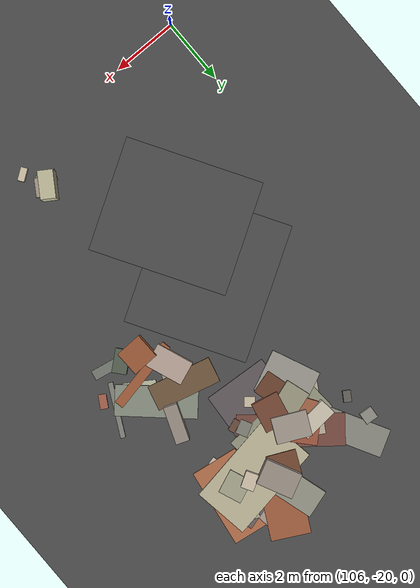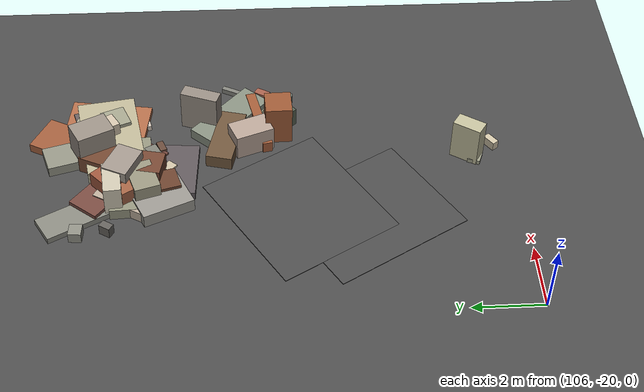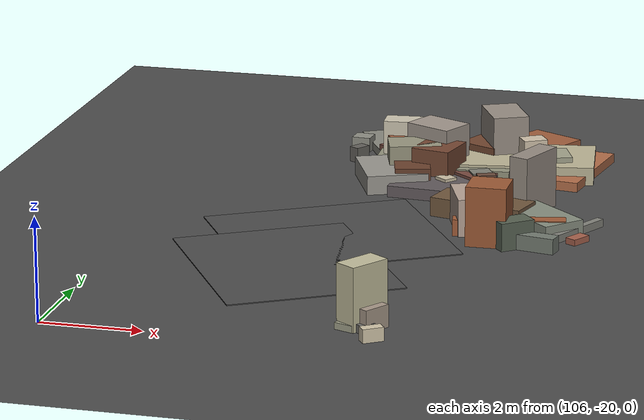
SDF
<sdf version="1.6">
 <world name="navitas_arena">
  <model name="ground_plane">
   <static>true</static>
   <link name="link">
    <collision name="collision">
     <geometry><plane><normal>0 0 1</normal><size>400 400</size></plane></geometry>
     <surface><friction><ode><mu>0.800</mu><mu2>0.800</mu2></ode></friction></surface>
    </collision>
    <visual name="visual">
     <cast_shadows>false</cast_shadows>
     <geometry><plane><normal>0 0 1</normal><size>400 400</size></plane></geometry>
     <material>
      <specular>0.04 0.04 0.04 1</specular>
      <script>
       <uri>file://media/materials/scripts/navitas_asphalt.material</uri>
       <name>Navitas/RealArenaAsphalt</name>
      </script>
     </material>
    </visual>
   </link>
  </model>
  <model name="road_zor_3_7">
   <static>true</static>
   <pose>109.474 -15.662 0.040 0 0 0.542</pose>
   <link name="link">
    <collision name="col"><geometry><box><size>3.467 4.200 0.020</size></box></geometry></collision>
    <visual name="vis">
     <geometry><box><size>3.467 4.200 0.020</size></box></geometry>
     <material>
      <specular>0.04 0.04 0.04 1</specular>
      <script>
       <uri>file://media/materials/scripts/navitas_asphalt.material</uri>
       <name>Navitas/RealArenaAsphalt</name>
      </script>
     </material>
    </visual>
   </link>
  </model>
  <model name="road_zor_3_8">
   <static>true</static>
   <pose>109.844 -13.779 0.040 0 0 2.110</pose>
   <link name="link">
    <collision name="col"><geometry><box><size>3.745 4.200 0.020</size></box></geometry></collision>
    <visual name="vis">
     <geometry><box><size>3.745 4.200 0.020</size></box></geometry>
     <material>
      <specular>0.04 0.04 0.04 1</specular>
      <script>
       <uri>file://media/materials/scripts/navitas_asphalt.material</uri>
       <name>Navitas/RealArenaAsphalt</name>
      </script>
     </material>
    </visual>
   </link>
  </model>
  <model name="deb_zor_59">
   <static>true</static>
   <pose>110.624 -9.342 0.000 0 0 0</pose>
   <link name="link">
    <collision name="col_0">
     <pose>-0.499 0.326 0.361 0.000 0.000 2.141</pose>
     <geometry><box><size>0.810 0.435 0.723</size></box></geometry>
    </collision>
    <visual name="vis_0">
     <pose>-0.499 0.326 0.361 0.000 0.000 2.141</pose>
     <geometry><box><size>0.810 0.435 0.723</size></box></geometry>
     <material>
      <ambient>0.60 0.36 0.25 1</ambient>
      <diffuse>0.64 0.39 0.27 1</diffuse>
      <specular>0.05 0.05 0.045 1</specular>
     </material>
    </visual>
    <collision name="col_1">
     <pose>0.622 0.624 0.141 0.000 0.000 1.735</pose>
     <geometry><box><size>0.220 0.219 0.282</size></box></geometry>
    </collision>
    <visual name="vis_1">
     <pose>0.622 0.624 0.141 0.000 0.000 1.735</pose>
     <geometry><box><size>0.220 0.219 0.282</size></box></geometry>
     <material>
      <ambient>0.61 0.35 0.29 1</ambient>
      <diffuse>0.66 0.38 0.31 1</diffuse>
      <specular>0.05 0.05 0.045 1</specular>
     </material>
    </visual>
    <collision name="col_2">
     <pose>0.409 -0.214 0.392 0.000 0.000 2.933</pose>
     <geometry><box><size>0.818 0.908 0.784</size></box></geometry>
    </collision>
    <visual name="vis_2">
     <pose>0.409 -0.214 0.392 0.000 0.000 2.933</pose>
     <geometry><box><size>0.818 0.908 0.784</size></box></geometry>
     <material>
      <ambient>0.42 0.26 0.19 1</ambient>
      <diffuse>0.46 0.28 0.20 1</diffuse>
      <specular>0.05 0.05 0.045 1</specular>
     </material>
    </visual>
    <collision name="col_3">
     <pose>0.124 0.067 0.073 0.000 0.000 1.874</pose>
     <geometry><box><size>2.369 0.306 0.147</size></box></geometry>
    </collision>
    <visual name="vis_3">
     <pose>0.124 0.067 0.073 0.000 0.000 1.874</pose>
     <geometry><box><size>2.369 0.306 0.147</size></box></geometry>
     <material>
      <ambient>0.63 0.60 0.53 1</ambient>
      <diffuse>0.68 0.65 0.57 1</diffuse>
      <specular>0.05 0.05 0.045 1</specular>
     </material>
    </visual>
    <collision name="col_4">
     <pose>0.616 0.426 0.137 0.000 0.000 2.727</pose>
     <geometry><box><size>0.232 0.344 0.273</size></box></geometry>
    </collision>
    <visual name="vis_4">
     <pose>0.616 0.426 0.137 0.000 0.000 2.727</pose>
     <geometry><box><size>0.232 0.344 0.273</size></box></geometry>
     <material>
      <ambient>0.48 0.46 0.43 1</ambient>
      <diffuse>0.52 0.50 0.47 1</diffuse>
      <specular>0.05 0.05 0.045 1</specular>
     </material>
    </visual>
    <collision name="col_5">
     <pose>0.241 0.457 0.529 0.000 0.000 2.690</pose>
     <geometry><box><size>1.043 0.763 1.059</size></box></geometry>
    </collision>
    <visual name="vis_5">
     <pose>0.241 0.457 0.529 0.000 0.000 2.690</pose>
     <geometry><box><size>1.043 0.763 1.059</size></box></geometry>
     <material>
      <ambient>0.58 0.55 0.51 1</ambient>
      <diffuse>0.63 0.59 0.55 1</diffuse>
      <specular>0.05 0.05 0.045 1</specular>
     </material>
    </visual>
    <collision name="col_6">
     <pose>0.045 0.675 0.371 0.000 0.000 2.301</pose>
     <geometry><box><size>1.047 0.888 0.742</size></box></geometry>
    </collision>
    <visual name="vis_6">
     <pose>0.045 0.675 0.371 0.000 0.000 2.301</pose>
     <geometry><box><size>1.047 0.888 0.742</size></box></geometry>
     <material>
      <ambient>0.57 0.32 0.22 1</ambient>
      <diffuse>0.62 0.34 0.24 1</diffuse>
      <specular>0.05 0.05 0.045 1</specular>
     </material>
    </visual>
   </link>
  </model>
  <model name="deb_zor_185">
   <static>true</static>
   <pose>113.041 -11.588 0.000 0 0 0</pose>
   <link name="link">
    <collision name="col_0">
     <pose>0.272 0.501 0.620 0.000 0.000 1.208</pose>
     <geometry><box><size>1.107 0.407 1.239</size></box></geometry>
    </collision>
    <visual name="vis_0">
     <pose>0.272 0.501 0.620 0.000 0.000 1.208</pose>
     <geometry><box><size>1.107 0.407 1.239</size></box></geometry>
     <material>
      <ambient>0.54 0.51 0.47 1</ambient>
      <diffuse>0.59 0.55 0.51 1</diffuse>
      <specular>0.05 0.05 0.045 1</specular>
     </material>
    </visual>
    <collision name="col_1">
     <pose>0.144 -1.179 0.168 0.000 0.000 0.197</pose>
     <geometry><box><size>2.219 0.284 0.335</size></box></geometry>
    </collision>
    <visual name="vis_1">
     <pose>0.144 -1.179 0.168 0.000 0.000 0.197</pose>
     <geometry><box><size>2.219 0.284 0.335</size></box></geometry>
     <material>
      <ambient>0.59 0.34 0.21 1</ambient>
      <diffuse>0.63 0.36 0.22 1</diffuse>
      <specular>0.05 0.05 0.045 1</specular>
     </material>
    </visual>
    <collision name="col_2">
     <pose>-0.657 -0.920 0.377 0.000 0.000 -1.208</pose>
     <geometry><box><size>1.140 0.718 0.755</size></box></geometry>
    </collision>
    <visual name="vis_2">
     <pose>-0.657 -0.920 0.377 0.000 0.000 -1.208</pose>
     <geometry><box><size>1.140 0.718 0.755</size></box></geometry>
     <material>
      <ambient>0.67 0.59 0.55 1</ambient>
      <diffuse>0.72 0.64 0.59 1</diffuse>
      <specular>0.05 0.05 0.045 1</specular>
     </material>
    </visual>
    <collision name="col_3">
     <pose>-0.595 -0.209 0.195 0.000 0.000 -0.249</pose>
     <geometry><box><size>1.958 0.758 0.390</size></box></geometry>
    </collision>
    <visual name="vis_3">
     <pose>-0.595 -0.209 0.195 0.000 0.000 -0.249</pose>
     <geometry><box><size>1.958 0.758 0.390</size></box></geometry>
     <material>
      <ambient>0.40 0.31 0.22 1</ambient>
      <diffuse>0.44 0.34 0.24 1</diffuse>
      <specular>0.05 0.05 0.045 1</specular>
     </material>
    </visual>
    <collision name="col_4">
     <pose>-0.354 -0.815 0.075 0.000 0.000 1.161</pose>
     <geometry><box><size>0.480 0.174 0.149</size></box></geometry>
    </collision>
    <visual name="vis_4">
     <pose>-0.354 -0.815 0.075 0.000 0.000 1.161</pose>
     <geometry><box><size>0.480 0.174 0.149</size></box></geometry>
     <material>
      <ambient>0.57 0.56 0.48 1</ambient>
      <diffuse>0.62 0.60 0.52 1</diffuse>
      <specular>0.05 0.05 0.045 1</specular>
     </material>
    </visual>
    <collision name="col_5">
     <pose>0.478 -0.350 0.155 0.000 0.000 -0.780</pose>
     <geometry><box><size>0.514 0.214 0.311</size></box></geometry>
    </collision>
    <visual name="vis_5">
     <pose>0.478 -0.350 0.155 0.000 0.000 -0.780</pose>
     <geometry><box><size>0.514 0.214 0.311</size></box></geometry>
     <material>
      <ambient>0.37 0.27 0.18 1</ambient>
      <diffuse>0.40 0.29 0.19 1</diffuse>
      <specular>0.05 0.05 0.045 1</specular>
     </material>
    </visual>
   </link>
  </model>
  <model name="deb_zor_215">
   <static>true</static>
   <pose>111.366 -19.476 0.000 0 0 0</pose>
   <link name="link">
    <collision name="col_0">
     <pose>0.721 0.020 0.132 0.000 0.000 0.610</pose>
     <geometry><box><size>0.408 0.202 0.264</size></box></geometry>
    </collision>
    <visual name="vis_0">
     <pose>0.721 0.020 0.132 0.000 0.000 0.610</pose>
     <geometry><box><size>0.408 0.202 0.264</size></box></geometry>
     <material>
      <ambient>0.76 0.71 0.61 1</ambient>
      <diffuse>0.82 0.77 0.66 1</diffuse>
      <specular>0.05 0.05 0.045 1</specular>
     </material>
    </visual>
    <collision name="col_1">
     <pose>0.385 0.549 0.080 0.000 0.000 -0.733</pose>
     <geometry><box><size>0.471 0.316 0.161</size></box></geometry>
    </collision>
    <visual name="vis_1">
     <pose>0.385 0.549 0.080 0.000 0.000 -0.733</pose>
     <geometry><box><size>0.471 0.316 0.161</size></box></geometry>
     <material>
      <ambient>0.42 0.40 0.39 1</ambient>
      <diffuse>0.45 0.44 0.42 1</diffuse>
      <specular>0.05 0.05 0.045 1</specular>
     </material>
    </visual>
    <collision name="col_2">
     <pose>0.162 0.558 0.066 0.000 0.000 1.207</pose>
     <geometry><box><size>0.361 0.379 0.132</size></box></geometry>
    </collision>
    <visual name="vis_2">
     <pose>0.162 0.558 0.066 0.000 0.000 1.207</pose>
     <geometry><box><size>0.361 0.379 0.132</size></box></geometry>
     <material>
      <ambient>0.58 0.57 0.49 1</ambient>
      <diffuse>0.62 0.62 0.53 1</diffuse>
      <specular>0.05 0.05 0.045 1</specular>
     </material>
    </visual>
    <collision name="col_3">
     <pose>0.495 0.699 0.218 0.000 0.000 -0.570</pose>
     <geometry><box><size>0.465 0.554 0.437</size></box></geometry>
    </collision>
    <visual name="vis_3">
     <pose>0.495 0.699 0.218 0.000 0.000 -0.570</pose>
     <geometry><box><size>0.465 0.554 0.437</size></box></geometry>
     <material>
      <ambient>0.60 0.55 0.49 1</ambient>
      <diffuse>0.65 0.59 0.53 1</diffuse>
      <specular>0.05 0.05 0.045 1</specular>
     </material>
    </visual>
    <collision name="col_4">
     <pose>0.353 0.781 0.616 0.000 0.000 -0.584</pose>
     <geometry><box><size>0.452 0.832 1.232</size></box></geometry>
    </collision>
    <visual name="vis_4">
     <pose>0.353 0.781 0.616 0.000 0.000 -0.584</pose>
     <geometry><box><size>0.452 0.832 1.232</size></box></geometry>
     <material>
      <ambient>0.71 0.68 0.57 1</ambient>
      <diffuse>0.76 0.74 0.61 1</diffuse>
      <specular>0.05 0.05 0.045 1</specular>
     </material>
    </visual>
   </link>
  </model>
  <model name="deb_zor_217">
   <static>true</static>
   <pose>110.672 -8.897 0.000 0 0 0</pose>
   <link name="link">
    <collision name="col_0">
     <pose>-0.182 -0.548 0.392 0.000 0.000 3.447</pose>
     <geometry><box><size>1.079 0.739 0.784</size></box></geometry>
    </collision>
    <visual name="vis_0">
     <pose>-0.182 -0.548 0.392 0.000 0.000 3.447</pose>
     <geometry><box><size>1.079 0.739 0.784</size></box></geometry>
     <material>
      <ambient>0.56 0.55 0.46 1</ambient>
      <diffuse>0.60 0.59 0.50 1</diffuse>
      <specular>0.05 0.05 0.045 1</specular>
     </material>
    </visual>
    <collision name="col_1">
     <pose>-0.327 0.396 0.122 0.000 0.000 3.316</pose>
     <geometry><box><size>0.201 0.478 0.244</size></box></geometry>
    </collision>
    <visual name="vis_1">
     <pose>-0.327 0.396 0.122 0.000 0.000 3.316</pose>
     <geometry><box><size>0.201 0.478 0.244</size></box></geometry>
     <material>
      <ambient>0.59 0.58 0.53 1</ambient>
      <diffuse>0.64 0.63 0.57 1</diffuse>
      <specular>0.05 0.05 0.045 1</specular>
     </material>
    </visual>
    <collision name="col_2">
     <pose>0.375 -0.170 0.161 0.000 0.000 3.203</pose>
     <geometry><box><size>2.872 1.260 0.323</size></box></geometry>
    </collision>
    <visual name="vis_2">
     <pose>0.375 -0.170 0.161 0.000 0.000 3.203</pose>
     <geometry><box><size>2.872 1.260 0.323</size></box></geometry>
     <material>
      <ambient>0.53 0.53 0.46 1</ambient>
      <diffuse>0.58 0.58 0.49 1</diffuse>
      <specular>0.05 0.05 0.045 1</specular>
     </material>
    </visual>
    <collision name="col_3">
     <pose>0.276 0.130 0.146 0.000 0.000 2.460</pose>
     <geometry><box><size>3.151 0.958 0.292</size></box></geometry>
    </collision>
    <visual name="vis_3">
     <pose>0.276 0.130 0.146 0.000 0.000 2.460</pose>
     <geometry><box><size>3.151 0.958 0.292</size></box></geometry>
     <material>
      <ambient>0.44 0.27 0.23 1</ambient>
      <diffuse>0.47 0.29 0.25 1</diffuse>
      <specular>0.05 0.05 0.045 1</specular>
     </material>
    </visual>
   </link>
  </model>
  <model name="deb_zor_220">
   <static>true</static>
   <pose>111.167 -9.655 0.000 0 0 0</pose>
   <link name="link">
    <collision name="col_0">
     <pose>-0.049 -0.531 0.098 0.000 0.000 -0.441</pose>
     <geometry><box><size>0.491 0.215 0.196</size></box></geometry>
    </collision>
    <visual name="vis_0">
     <pose>-0.049 -0.531 0.098 0.000 0.000 -0.441</pose>
     <geometry><box><size>0.491 0.215 0.196</size></box></geometry>
     <material>
      <ambient>0.31 0.26 0.24 1</ambient>
      <diffuse>0.34 0.28 0.26 1</diffuse>
      <specular>0.05 0.05 0.045 1</specular>
     </material>
    </visual>
    <collision name="col_1">
     <pose>0.945 -0.274 0.170 0.000 0.000 1.932</pose>
     <geometry><box><size>0.198 0.383 0.341</size></box></geometry>
    </collision>
    <visual name="vis_1">
     <pose>0.945 -0.274 0.170 0.000 0.000 1.932</pose>
     <geometry><box><size>0.198 0.383 0.341</size></box></geometry>
     <material>
      <ambient>0.38 0.26 0.21 1</ambient>
      <diffuse>0.41 0.29 0.23 1</diffuse>
      <specular>0.05 0.05 0.045 1</specular>
     </material>
    </visual>
    <collision name="col_2">
     <pose>0.110 -0.520 0.117 0.000 0.000 -0.073</pose>
     <geometry><box><size>1.932 1.558 0.234</size></box></geometry>
    </collision>
    <visual name="vis_2">
     <pose>0.110 -0.520 0.117 0.000 0.000 -0.073</pose>
     <geometry><box><size>1.932 1.558 0.234</size></box></geometry>
     <material>
      <ambient>0.36 0.32 0.33 1</ambient>
      <diffuse>0.38 0.35 0.36 1</diffuse>
      <specular>0.05 0.05 0.045 1</specular>
     </material>
    </visual>
    <collision name="col_3">
     <pose>-1.048 -0.268 0.196 0.000 0.000 1.987</pose>
     <geometry><box><size>1.515 1.271 0.392</size></box></geometry>
    </collision>
    <visual name="vis_3">
     <pose>-1.048 -0.268 0.196 0.000 0.000 1.987</pose>
     <geometry><box><size>1.515 1.271 0.392</size></box></geometry>
     <material>
      <ambient>0.56 0.55 0.52 1</ambient>
      <diffuse>0.60 0.59 0.56 1</diffuse>
      <specular>0.05 0.05 0.045 1</specular>
     </material>
    </visual>
    <collision name="col_4">
     <pose>0.695 -0.675 0.064 0.000 0.000 0.549</pose>
     <geometry><box><size>0.312 0.351 0.128</size></box></geometry>
    </collision>
    <visual name="vis_4">
     <pose>0.695 -0.675 0.064 0.000 0.000 0.549</pose>
     <geometry><box><size>0.312 0.351 0.128</size></box></geometry>
     <material>
      <ambient>0.40 0.28 0.22 1</ambient>
      <diffuse>0.43 0.30 0.24 1</diffuse>
      <specular>0.05 0.05 0.045 1</specular>
     </material>
    </visual>
    <collision name="col_5">
     <pose>-0.132 0.570 0.156 0.000 0.000 -0.297</pose>
     <geometry><box><size>0.513 0.327 0.311</size></box></geometry>
    </collision>
    <visual name="vis_5">
     <pose>-0.132 0.570 0.156 0.000 0.000 -0.297</pose>
     <geometry><box><size>0.513 0.327 0.311</size></box></geometry>
     <material>
      <ambient>0.43 0.30 0.22 1</ambient>
      <diffuse>0.46 0.32 0.24 1</diffuse>
      <specular>0.05 0.05 0.045 1</specular>
     </material>
    </visual>
    <collision name="col_6">
     <pose>-0.714 0.771 0.100 0.000 0.000 2.029</pose>
     <geometry><box><size>2.333 0.260 0.200</size></box></geometry>
    </collision>
    <visual name="vis_6">
     <pose>-0.714 0.771 0.100 0.000 0.000 2.029</pose>
     <geometry><box><size>2.333 0.260 0.200</size></box></geometry>
     <material>
      <ambient>0.33 0.35 0.35 1</ambient>
      <diffuse>0.36 0.37 0.38 1</diffuse>
      <specular>0.05 0.05 0.045 1</specular>
     </material>
    </visual>
   </link>
  </model>
  <model name="deb_zor_227">
   <static>true</static>
   <pose>113.665 -12.754 0.000 0 0 0</pose>
   <link name="link">
    <collision name="col_0">
     <pose>0.908 -0.160 0.063 0.000 0.000 2.607</pose>
     <geometry><box><size>0.235 0.430 0.125</size></box></geometry>
    </collision>
    <visual name="vis_0">
     <pose>0.908 -0.160 0.063 0.000 0.000 2.607</pose>
     <geometry><box><size>0.235 0.430 0.125</size></box></geometry>
     <material>
      <ambient>0.60 0.35 0.28 1</ambient>
      <diffuse>0.65 0.38 0.30 1</diffuse>
      <specular>0.05 0.05 0.045 1</specular>
     </material>
    </visual>
    <collision name="col_1">
     <pose>-0.279 0.834 0.158 0.000 0.000 2.401</pose>
     <geometry><box><size>2.424 0.910 0.316</size></box></geometry>
    </collision>
    <visual name="vis_1">
     <pose>-0.279 0.834 0.158 0.000 0.000 2.401</pose>
     <geometry><box><size>2.424 0.910 0.316</size></box></geometry>
     <material>
      <ambient>0.49 0.52 0.46 1</ambient>
      <diffuse>0.53 0.56 0.50 1</diffuse>
      <specular>0.05 0.05 0.045 1</specular>
     </material>
    </visual>
    <collision name="col_2">
     <pose>-0.264 -0.719 0.280 0.000 0.000 3.838</pose>
     <geometry><box><size>0.714 0.434 0.560</size></box></geometry>
    </collision>
    <visual name="vis_2">
     <pose>-0.264 -0.719 0.280 0.000 0.000 3.838</pose>
     <geometry><box><size>0.714 0.434 0.560</size></box></geometry>
     <material>
      <ambient>0.32 0.35 0.30 1</ambient>
      <diffuse>0.34 0.38 0.32 1</diffuse>
      <specular>0.05 0.05 0.045 1</specular>
     </material>
    </visual>
    <collision name="col_3">
     <pose>-0.768 -0.563 0.603 0.000 0.000 1.596</pose>
     <geometry><box><size>0.764 0.801 1.206</size></box></geometry>
    </collision>
    <visual name="vis_3">
     <pose>-0.768 -0.563 0.603 0.000 0.000 1.596</pose>
     <geometry><box><size>0.764 0.801 1.206</size></box></geometry>
     <material>
      <ambient>0.57 0.32 0.19 1</ambient>
      <diffuse>0.61 0.35 0.21 1</diffuse>
      <specular>0.05 0.05 0.045 1</specular>
     </material>
    </visual>
    <collision name="col_4">
     <pose>-0.182 0.141 0.062 0.000 0.000 2.559</pose>
     <geometry><box><size>1.034 0.211 0.125</size></box></geometry>
    </collision>
    <visual name="vis_4">
     <pose>-0.182 0.141 0.062 0.000 0.000 2.559</pose>
     <geometry><box><size>1.034 0.211 0.125</size></box></geometry>
     <material>
      <ambient>0.67 0.68 0.58 1</ambient>
      <diffuse>0.73 0.73 0.62 1</diffuse>
      <specular>0.05 0.05 0.045 1</specular>
     </material>
    </visual>
    <collision name="col_5">
     <pose>0.769 0.284 0.078 0.000 0.000 4.238</pose>
     <geometry><box><size>1.649 0.150 0.157</size></box></geometry>
    </collision>
    <visual name="vis_5">
     <pose>0.769 0.284 0.078 0.000 0.000 4.238</pose>
     <geometry><box><size>1.649 0.150 0.157</size></box></geometry>
     <material>
      <ambient>0.47 0.47 0.45 1</ambient>
      <diffuse>0.51 0.51 0.48 1</diffuse>
      <specular>0.05 0.05 0.045 1</specular>
     </material>
    </visual>
    <collision name="col_6">
     <pose>0.117 -0.808 0.156 0.000 0.000 2.947</pose>
     <geometry><box><size>1.034 0.299 0.311</size></box></geometry>
    </collision>
    <visual name="vis_6">
     <pose>0.117 -0.808 0.156 0.000 0.000 2.947</pose>
     <geometry><box><size>1.034 0.299 0.311</size></box></geometry>
     <material>
      <ambient>0.42 0.45 0.41 1</ambient>
      <diffuse>0.45 0.48 0.44 1</diffuse>
      <specular>0.05 0.05 0.045 1</specular>
     </material>
    </visual>
   </link>
  </model>
  <model name="deb_zor_263">
   <static>true</static>
   <pose>112.917 -8.193 0.000 0 0 0</pose>
   <link name="link">
    <collision name="col_0">
     <pose>-0.328 -0.284 0.188 0.000 0.000 0.155</pose>
     <geometry><box><size>2.966 1.671 0.376</size></box></geometry>
    </collision>
    <visual name="vis_0">
     <pose>-0.328 -0.284 0.188 0.000 0.000 0.155</pose>
     <geometry><box><size>2.966 1.671 0.376</size></box></geometry>
     <material>
      <ambient>0.69 0.65 0.55 1</ambient>
      <diffuse>0.74 0.71 0.59 1</diffuse>
      <specular>0.05 0.05 0.045 1</specular>
     </material>
    </visual>
    <collision name="col_1">
     <pose>0.131 0.023 0.167 0.000 0.000 1.209</pose>
     <geometry><box><size>1.538 0.157 0.335</size></box></geometry>
    </collision>
    <visual name="vis_1">
     <pose>0.131 0.023 0.167 0.000 0.000 1.209</pose>
     <geometry><box><size>1.538 0.157 0.335</size></box></geometry>
     <material>
      <ambient>0.62 0.61 0.54 1</ambient>
      <diffuse>0.67 0.66 0.58 1</diffuse>
      <specular>0.05 0.05 0.045 1</specular>
     </material>
    </visual>
    <collision name="col_2">
     <pose>0.104 0.230 0.097 0.000 0.000 1.710</pose>
     <geometry><box><size>1.923 0.708 0.194</size></box></geometry>
    </collision>
    <visual name="vis_2">
     <pose>0.104 0.230 0.097 0.000 0.000 1.710</pose>
     <geometry><box><size>1.923 0.708 0.194</size></box></geometry>
     <material>
      <ambient>0.62 0.55 0.52 1</ambient>
      <diffuse>0.67 0.60 0.56 1</diffuse>
      <specular>0.05 0.05 0.045 1</specular>
     </material>
    </visual>
    <collision name="col_3">
     <pose>-0.087 -0.517 0.076 0.000 0.000 2.439</pose>
     <geometry><box><size>1.782 0.298 0.153</size></box></geometry>
    </collision>
    <visual name="vis_3">
     <pose>-0.087 -0.517 0.076 0.000 0.000 2.439</pose>
     <geometry><box><size>1.782 0.298 0.153</size></box></geometry>
     <material>
      <ambient>0.65 0.37 0.29 1</ambient>
      <diffuse>0.70 0.40 0.31 1</diffuse>
      <specular>0.05 0.05 0.045 1</specular>
     </material>
    </visual>
    <collision name="col_4">
     <pose>0.496 -0.151 0.097 0.000 0.000 1.421</pose>
     <geometry><box><size>2.358 1.428 0.193</size></box></geometry>
    </collision>
    <visual name="vis_4">
     <pose>0.496 -0.151 0.097 0.000 0.000 1.421</pose>
     <geometry><box><size>2.358 1.428 0.193</size></box></geometry>
     <material>
      <ambient>0.65 0.40 0.27 1</ambient>
      <diffuse>0.70 0.43 0.29 1</diffuse>
      <specular>0.05 0.05 0.045 1</specular>
     </material>
    </visual>
    <collision name="col_5">
     <pose>0.300 -0.387 0.244 0.000 0.000 0.380</pose>
     <geometry><box><size>0.724 0.708 0.488</size></box></geometry>
    </collision>
    <visual name="vis_5">
     <pose>0.300 -0.387 0.244 0.000 0.000 0.380</pose>
     <geometry><box><size>0.724 0.708 0.488</size></box></geometry>
     <material>
      <ambient>0.60 0.59 0.51 1</ambient>
      <diffuse>0.64 0.64 0.55 1</diffuse>
      <specular>0.05 0.05 0.045 1</specular>
     </material>
    </visual>
    <collision name="col_6">
     <pose>0.135 -0.405 0.078 0.000 0.000 1.800</pose>
     <geometry><box><size>2.030 0.238 0.155</size></box></geometry>
    </collision>
    <visual name="vis_6">
     <pose>0.135 -0.405 0.078 0.000 0.000 1.800</pose>
     <geometry><box><size>2.030 0.238 0.155</size></box></geometry>
     <material>
      <ambient>0.74 0.70 0.65 1</ambient>
      <diffuse>0.80 0.75 0.70 1</diffuse>
      <specular>0.05 0.05 0.045 1</specular>
     </material>
    </visual>
   </link>
  </model>
  <model name="deb_zor_285">
   <static>true</static>
   <pose>112.434 -7.929 0.000 0 0 0</pose>
   <link name="link">
    <collision name="col_0">
     <pose>0.150 0.244 0.130 0.000 0.000 0.263</pose>
     <geometry><box><size>2.281 0.134 0.259</size></box></geometry>
    </collision>
    <visual name="vis_0">
     <pose>0.150 0.244 0.130 0.000 0.000 0.263</pose>
     <geometry><box><size>2.281 0.134 0.259</size></box></geometry>
     <material>
      <ambient>0.38 0.35 0.34 1</ambient>
      <diffuse>0.41 0.37 0.37 1</diffuse>
      <specular>0.05 0.05 0.045 1</specular>
     </material>
    </visual>
    <collision name="col_1">
     <pose>-0.435 0.456 0.152 0.000 0.000 1.859</pose>
     <geometry><box><size>1.783 0.859 0.304</size></box></geometry>
    </collision>
    <visual name="vis_1">
     <pose>-0.435 0.456 0.152 0.000 0.000 1.859</pose>
     <geometry><box><size>1.783 0.859 0.304</size></box></geometry>
     <material>
      <ambient>0.54 0.53 0.48 1</ambient>
      <diffuse>0.58 0.58 0.52 1</diffuse>
      <specular>0.05 0.05 0.045 1</specular>
     </material>
    </visual>
    <collision name="col_2">
     <pose>-0.672 -0.196 0.258 0.000 0.000 2.700</pose>
     <geometry><box><size>0.885 0.776 0.517</size></box></geometry>
    </collision>
    <visual name="vis_2">
     <pose>-0.672 -0.196 0.258 0.000 0.000 2.700</pose>
     <geometry><box><size>0.885 0.776 0.517</size></box></geometry>
     <material>
      <ambient>0.41 0.26 0.18 1</ambient>
      <diffuse>0.45 0.28 0.19 1</diffuse>
      <specular>0.05 0.05 0.045 1</specular>
     </material>
    </visual>
    <collision name="col_3">
     <pose>0.354 -0.518 0.372 0.000 0.000 0.523</pose>
     <geometry><box><size>0.500 0.390 0.744</size></box></geometry>
    </collision>
    <visual name="vis_3">
     <pose>0.354 -0.518 0.372 0.000 0.000 0.523</pose>
     <geometry><box><size>0.500 0.390 0.744</size></box></geometry>
     <material>
      <ambient>0.76 0.70 0.62 1</ambient>
      <diffuse>0.82 0.76 0.67 1</diffuse>
      <specular>0.05 0.05 0.045 1</specular>
     </material>
    </visual>
    <collision name="col_4">
     <pose>-0.029 0.526 0.134 0.000 0.000 1.083</pose>
     <geometry><box><size>2.277 1.190 0.269</size></box></geometry>
    </collision>
    <visual name="vis_4">
     <pose>-0.029 0.526 0.134 0.000 0.000 1.083</pose>
     <geometry><box><size>2.277 1.190 0.269</size></box></geometry>
     <material>
      <ambient>0.59 0.34 0.22 1</ambient>
      <diffuse>0.63 0.37 0.24 1</diffuse>
      <specular>0.05 0.05 0.045 1</specular>
     </material>
    </visual>
    <collision name="col_5">
     <pose>-0.164 -0.440 0.156 0.000 0.000 2.363</pose>
     <geometry><box><size>0.343 0.460 0.312</size></box></geometry>
    </collision>
    <visual name="vis_5">
     <pose>-0.164 -0.440 0.156 0.000 0.000 2.363</pose>
     <geometry><box><size>0.343 0.460 0.312</size></box></geometry>
     <material>
      <ambient>0.59 0.36 0.24 1</ambient>
      <diffuse>0.64 0.38 0.26 1</diffuse>
      <specular>0.05 0.05 0.045 1</specular>
     </material>
    </visual>
    <collision name="col_6">
     <pose>-0.346 -0.056 0.583 0.000 0.000 2.024</pose>
     <geometry><box><size>1.100 0.752 1.165</size></box></geometry>
    </collision>
    <visual name="vis_6">
     <pose>-0.346 -0.056 0.583 0.000 0.000 2.024</pose>
     <geometry><box><size>1.100 0.752 1.165</size></box></geometry>
     <material>
      <ambient>0.55 0.52 0.48 1</ambient>
      <diffuse>0.60 0.56 0.52 1</diffuse>
      <specular>0.05 0.05 0.045 1</specular>
     </material>
    </visual>
   </link>
  </model>
  <model name="deb_zor_321">
   <static>true</static>
   <pose>111.265 -9.772 0.000 0 0 0</pose>
   <link name="link">
    <collision name="col_0">
     <pose>-0.673 -0.313 0.244 0.000 0.000 0.271</pose>
     <geometry><box><size>0.726 0.692 0.488</size></box></geometry>
    </collision>
    <visual name="vis_0">
     <pose>-0.673 -0.313 0.244 0.000 0.000 0.271</pose>
     <geometry><box><size>0.726 0.692 0.488</size></box></geometry>
     <material>
      <ambient>0.39 0.24 0.17 1</ambient>
      <diffuse>0.42 0.26 0.18 1</diffuse>
      <specular>0.05 0.05 0.045 1</specular>
     </material>
    </visual>
    <collision name="col_1">
     <pose>0.059 -0.393 0.149 0.000 0.000 2.462</pose>
     <geometry><box><size>0.326 0.299 0.297</size></box></geometry>
    </collision>
    <visual name="vis_1">
     <pose>0.059 -0.393 0.149 0.000 0.000 2.462</pose>
     <geometry><box><size>0.326 0.299 0.297</size></box></geometry>
     <material>
      <ambient>0.74 0.69 0.60 1</ambient>
      <diffuse>0.80 0.75 0.65 1</diffuse>
      <specular>0.05 0.05 0.045 1</specular>
     </material>
    </visual>
    <collision name="col_2">
     <pose>0.069 -0.166 0.112 0.000 0.000 1.611</pose>
     <geometry><box><size>1.908 0.124 0.224</size></box></geometry>
    </collision>
    <visual name="vis_2">
     <pose>0.069 -0.166 0.112 0.000 0.000 1.611</pose>
     <geometry><box><size>1.908 0.124 0.224</size></box></geometry>
     <material>
      <ambient>0.37 0.34 0.32 1</ambient>
      <diffuse>0.40 0.37 0.35 1</diffuse>
      <specular>0.05 0.05 0.045 1</specular>
     </material>
    </visual>
    <collision name="col_3">
     <pose>-0.062 0.555 0.125 0.000 0.000 0.229</pose>
     <geometry><box><size>2.354 0.202 0.249</size></box></geometry>
    </collision>
    <visual name="vis_3">
     <pose>-0.062 0.555 0.125 0.000 0.000 0.229</pose>
     <geometry><box><size>2.354 0.202 0.249</size></box></geometry>
     <material>
      <ambient>0.57 0.34 0.20 1</ambient>
      <diffuse>0.61 0.37 0.22 1</diffuse>
      <specular>0.05 0.05 0.045 1</specular>
     </material>
    </visual>
    <collision name="col_4">
     <pose>0.682 0.081 0.163 0.000 0.000 0.479</pose>
     <geometry><box><size>0.430 0.357 0.326</size></box></geometry>
    </collision>
    <visual name="vis_4">
     <pose>0.682 0.081 0.163 0.000 0.000 0.479</pose>
     <geometry><box><size>0.430 0.357 0.326</size></box></geometry>
     <material>
      <ambient>0.46 0.46 0.42 1</ambient>
      <diffuse>0.50 0.50 0.46 1</diffuse>
      <specular>0.05 0.05 0.045 1</specular>
     </material>
    </visual>
    <collision name="col_5">
     <pose>-0.645 -0.148 0.171 0.000 0.000 1.727</pose>
     <geometry><box><size>0.354 0.190 0.342</size></box></geometry>
    </collision>
    <visual name="vis_5">
     <pose>-0.645 -0.148 0.171 0.000 0.000 1.727</pose>
     <geometry><box><size>0.354 0.190 0.342</size></box></geometry>
     <material>
      <ambient>0.33 0.34 0.33 1</ambient>
      <diffuse>0.35 0.37 0.36 1</diffuse>
      <specular>0.05 0.05 0.045 1</specular>
     </material>
    </visual>
   </link>
  </model>
  <model name="deb_zor_325">
   <static>true</static>
   <pose>109.795 -8.318 0.000 0 0 0</pose>
   <link name="link">
    <collision name="col_0">
     <pose>-0.728 -0.147 0.159 0.000 0.000 2.576</pose>
     <geometry><box><size>0.231 0.338 0.318</size></box></geometry>
    </collision>
    <visual name="vis_0">
     <pose>-0.728 -0.147 0.159 0.000 0.000 2.576</pose>
     <geometry><box><size>0.231 0.338 0.318</size></box></geometry>
     <material>
      <ambient>0.36 0.35 0.33 1</ambient>
      <diffuse>0.39 0.38 0.36 1</diffuse>
      <specular>0.05 0.05 0.045 1</specular>
     </material>
    </visual>
    <collision name="col_1">
     <pose>0.420 -0.291 0.510 0.000 0.000 3.231</pose>
     <geometry><box><size>1.080 0.495 1.020</size></box></geometry>
    </collision>
    <visual name="vis_1">
     <pose>0.420 -0.291 0.510 0.000 0.000 3.231</pose>
     <geometry><box><size>1.080 0.495 1.020</size></box></geometry>
     <material>
      <ambient>0.75 0.71 0.64 1</ambient>
      <diffuse>0.80 0.77 0.69 1</diffuse>
      <specular>0.05 0.05 0.045 1</specular>
     </material>
    </visual>
    <collision name="col_2">
     <pose>0.001 0.379 0.088 0.000 0.000 2.073</pose>
     <geometry><box><size>2.868 0.857 0.176</size></box></geometry>
    </collision>
    <visual name="vis_2">
     <pose>0.001 0.379 0.088 0.000 0.000 2.073</pose>
     <geometry><box><size>2.868 0.857 0.176</size></box></geometry>
     <material>
      <ambient>0.50 0.50 0.46 1</ambient>
      <diffuse>0.54 0.54 0.50 1</diffuse>
      <specular>0.05 0.05 0.045 1</specular>
     </material>
    </visual>
    <collision name="col_3">
     <pose>0.648 -0.820 0.160 0.000 0.000 2.610</pose>
     <geometry><box><size>1.483 1.666 0.321</size></box></geometry>
    </collision>
    <visual name="vis_3">
     <pose>0.648 -0.820 0.160 0.000 0.000 2.610</pose>
     <geometry><box><size>1.483 1.666 0.321</size></box></geometry>
     <material>
      <ambient>0.67 0.62 0.56 1</ambient>
      <diffuse>0.73 0.67 0.60 1</diffuse>
      <specular>0.05 0.05 0.045 1</specular>
     </material>
    </visual>
    <collision name="col_4">
     <pose>-0.847 0.685 0.154 0.000 0.000 3.057</pose>
     <geometry><box><size>0.392 0.363 0.308</size></box></geometry>
    </collision>
    <visual name="vis_4">
     <pose>-0.847 0.685 0.154 0.000 0.000 3.057</pose>
     <geometry><box><size>0.392 0.363 0.308</size></box></geometry>
     <material>
      <ambient>0.52 0.51 0.48 1</ambient>
      <diffuse>0.56 0.56 0.52 1</diffuse>
      <specular>0.05 0.05 0.045 1</specular>
     </material>
    </visual>
    <collision name="col_5">
     <pose>0.556 -0.561 0.132 0.000 0.000 1.283</pose>
     <geometry><box><size>1.589 0.173 0.265</size></box></geometry>
    </collision>
    <visual name="vis_5">
     <pose>0.556 -0.561 0.132 0.000 0.000 1.283</pose>
     <geometry><box><size>1.589 0.173 0.265</size></box></geometry>
     <material>
      <ambient>0.53 0.53 0.48 1</ambient>
      <diffuse>0.57 0.57 0.52 1</diffuse>
      <specular>0.05 0.05 0.045 1</specular>
     </material>
    </visual>
   </link>
  </model>
 </world>
</sdf>
